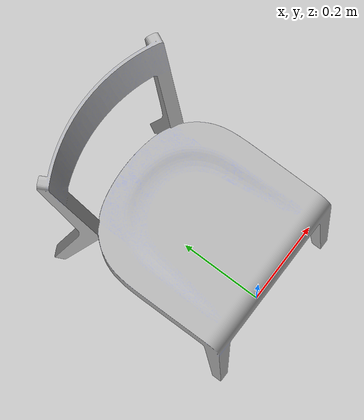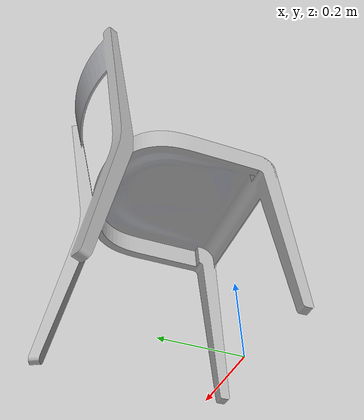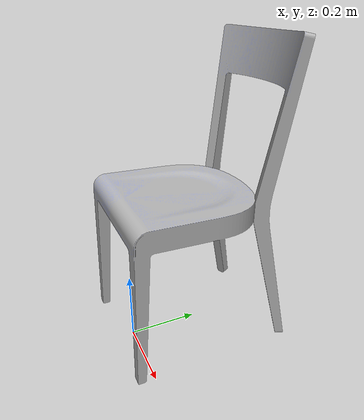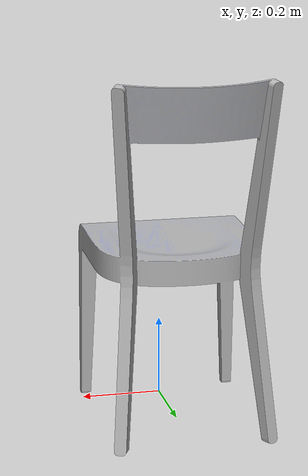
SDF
<?xml version="1.0"?>

<sdf version="1.4">
    <model name="chair3">
        <static>true</static>
        <link name="chair3_link">

            <visual name="chair3_mesh">
                <geometry>
                    <mesh>
                        <uri>model://chair3/meshes/model.dae</uri>
                    </mesh>
                </geometry>
            </visual>

            <collision name="chair3_collison">
                <pose>0 0.197271 0.443024 0 0 0</pose>
                <geometry>
                    <box>
                        <size>0.433466 0.502819 0.869444</size>
                    </box>
                </geometry>
            </collision>

        </link>
    </model>
</sdf>
